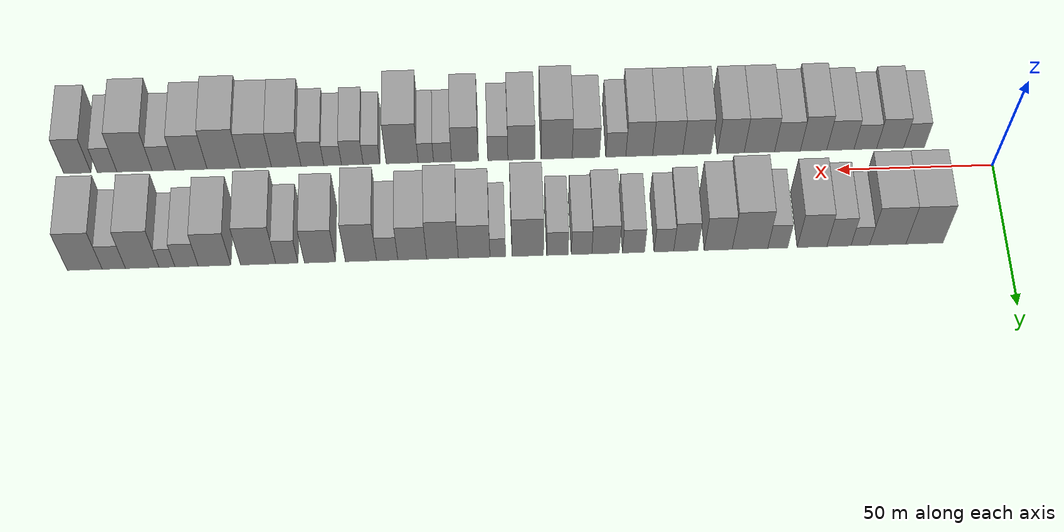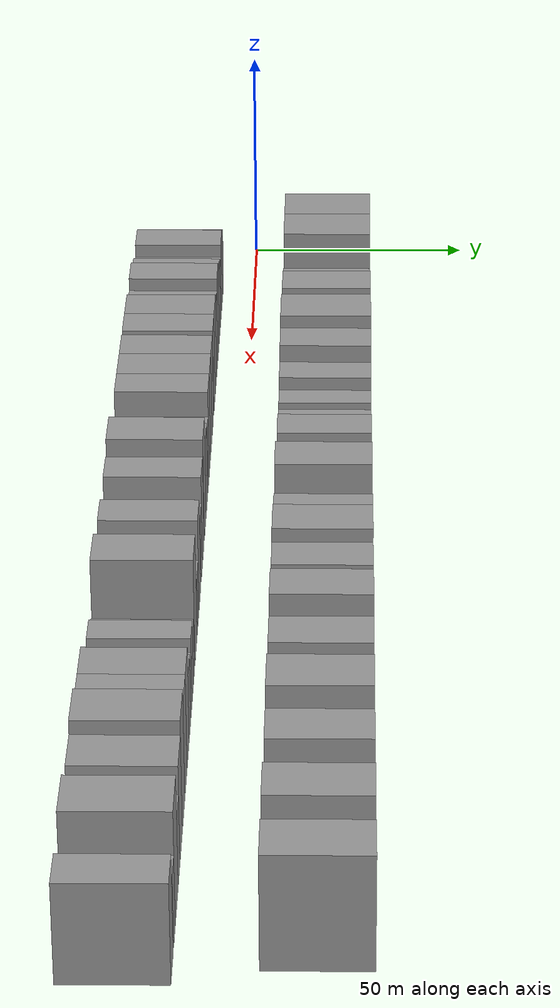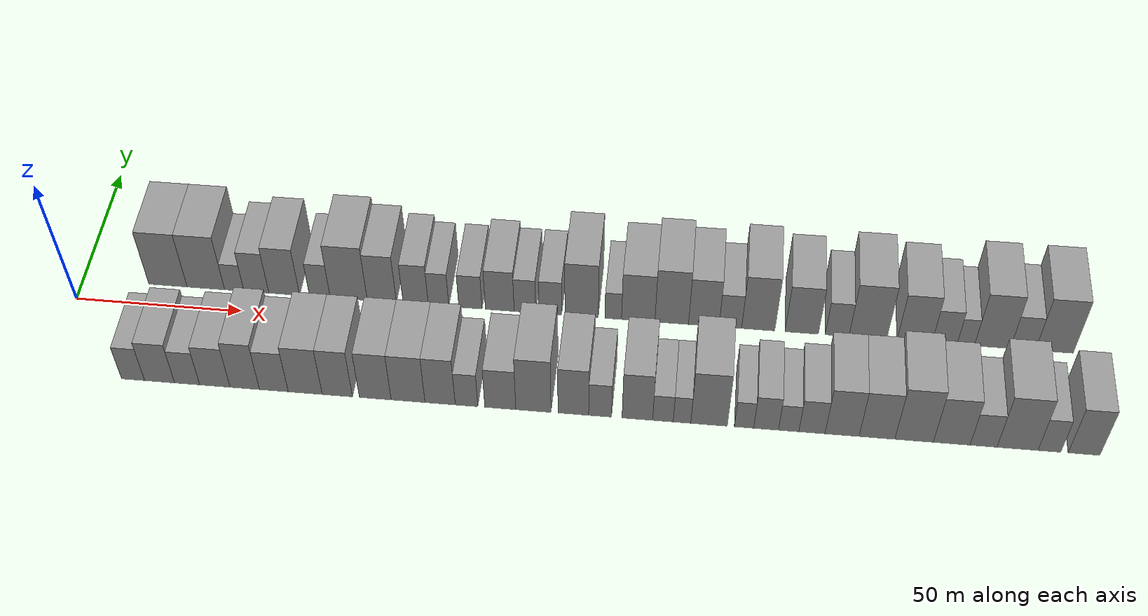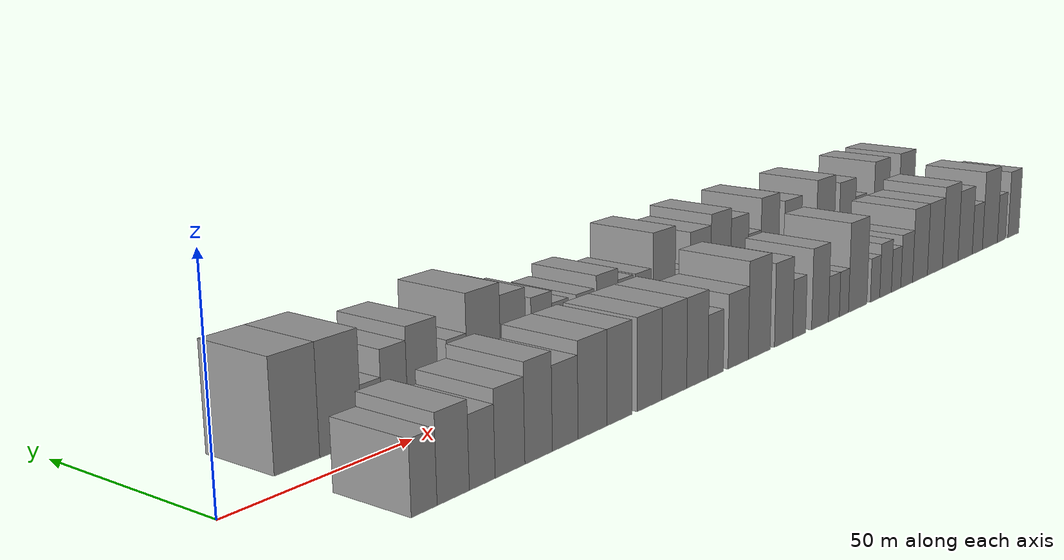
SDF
<sdf version="1.6">
 <world name="default">
  <scene>
   <sky><clouds><speed>12</speed></clouds></sky>
   <ambient>0.4 0.4 0.4 1</ambient>
   <background>0.7 0.7 0.7 1</background>
   <shadows>1</shadows>
  </scene>
  <gravity>0 0 -9.8066</gravity>
  <magnetic_field>6e-06 2.3e-05 -4.2e-05</magnetic_field>
  <physics default="0" name="default_physics" type="ode">
   <ode>
    <solver>
     <type>quick</type>
     <iters>10</iters>
     <sor>1.0</sor>
     <use_dynamic_moi_rescaling>0</use_dynamic_moi_rescaling>
    </solver>
    <constraints>
     <cfm>0</cfm>
     <erp>0.2</erp>
     <contact_max_correcting_vel>100</contact_max_correcting_vel>
     <contact_surface_layer>0.001</contact_surface_layer>
    </constraints>
   </ode>
   <max_step_size>0.004</max_step_size>
   <real_time_factor>1</real_time_factor>
   <real_time_update_rate>250</real_time_update_rate>
  </physics>
  <light name="sun" type="directional">
   <pose>0 0 10 0 0 0</pose>
   <diffuse>0.8 0.8 0.8 1</diffuse>
   <specular>0.2 0.2 0.2 1</specular>
   <attenuation>
    <range>1000</range>
    <constant>0.9</constant>
    <linear>0.01</linear>
    <quadratic>0.001</quadratic>
   </attenuation>
   <direction>-0.5 0.1 -0.9</direction>
  </light>
  <model name="building_1">
   <static>1</static>
   <pose>25.8638 17.5000 0 0.000000 0.000000 1.570796</pose>
   <link name="link">
    <pose>0 0 12.00 0 0 0</pose>
    <collision name="collision"><geometry><box><size>20.0000 11.7275 24.0000</size></box></geometry></collision>
    <visual name="visual">
     <cast_shadows>0</cast_shadows>
     <geometry><box><size>20.0000 11.7275 24.0000</size></box></geometry>
     <material>
      <script>
       <uri>model://grey_wall/materials/scripts</uri>
       <uri>model://grey_wall/materials/textures</uri>
       <name>vrc/grey_wall</name>
      </script>
     </material>
    </visual>
   </link>
  </model>
  <model name="building_2">
   <static>1</static>
   <pose>37.4629 17.5000 0 0.000000 0.000000 1.570796</pose>
   <link name="link">
    <pose>0 0 12.00 0 0 0</pose>
    <collision name="collision"><geometry><box><size>20.0000 11.4708 24.0000</size></box></geometry></collision>
    <visual name="visual">
     <cast_shadows>0</cast_shadows>
     <geometry><box><size>20.0000 11.4708 24.0000</size></box></geometry>
     <material>
      <script>
       <uri>model://grey_wall/materials/scripts</uri>
       <uri>model://grey_wall/materials/textures</uri>
       <name>vrc/grey_wall</name>
      </script>
     </material>
    </visual>
   </link>
  </model>
  <model name="building_3">
   <static>1</static>
   <pose>46.1429 17.5000 0 0.000000 0.000000 1.570796</pose>
   <link name="link">
    <pose>0 0 6.00 0 0 0</pose>
    <collision name="collision"><geometry><box><size>20.0000 5.8892 12.0000</size></box></geometry></collision>
    <visual name="visual">
     <cast_shadows>0</cast_shadows>
     <geometry><box><size>20.0000 5.8892 12.0000</size></box></geometry>
     <material>
      <script>
       <uri>model://grey_wall/materials/scripts</uri>
       <uri>model://grey_wall/materials/textures</uri>
       <name>vrc/grey_wall</name>
      </script>
     </material>
    </visual>
   </link>
  </model>
  <model name="building_4">
   <static>1</static>
   <pose>52.8842 17.5000 0 0.000000 0.000000 1.570796</pose>
   <link name="link">
    <pose>0 0 9.00 0 0 0</pose>
    <collision name="collision"><geometry><box><size>20.0000 7.5933 18.0000</size></box></geometry></collision>
    <visual name="visual">
     <cast_shadows>0</cast_shadows>
     <geometry><box><size>20.0000 7.5933 18.0000</size></box></geometry>
     <material>
      <script>
       <uri>model://grey_wall/materials/scripts</uri>
       <uri>model://grey_wall/materials/textures</uri>
       <name>vrc/grey_wall</name>
      </script>
     </material>
    </visual>
   </link>
  </model>
  <model name="building_5">
   <static>1</static>
   <pose>61.3666 17.5000 0 0.000000 0.000000 1.570796</pose>
   <link name="link">
    <pose>0 0 10.50 0 0 0</pose>
    <collision name="collision"><geometry><box><size>20.0000 9.3717 21.0000</size></box></geometry></collision>
    <visual name="visual">
     <cast_shadows>0</cast_shadows>
     <geometry><box><size>20.0000 9.3717 21.0000</size></box></geometry>
     <material>
      <script>
       <uri>model://grey_wall/materials/scripts</uri>
       <uri>model://grey_wall/materials/textures</uri>
       <name>vrc/grey_wall</name>
      </script>
     </material>
    </visual>
   </link>
  </model>
  <model name="building_6">
   <static>1</static>
   <pose>72.1852 17.5000 0 0.000000 0.000000 1.570796</pose>
   <link name="link">
    <pose>0 0 7.50 0 0 0</pose>
    <collision name="collision"><geometry><box><size>20.0000 6.2654 15.0000</size></box></geometry></collision>
    <visual name="visual">
     <cast_shadows>0</cast_shadows>
     <geometry><box><size>20.0000 6.2654 15.0000</size></box></geometry>
     <material>
      <script>
       <uri>model://grey_wall/materials/scripts</uri>
       <uri>model://grey_wall/materials/textures</uri>
       <name>vrc/grey_wall</name>
      </script>
     </material>
    </visual>
   </link>
  </model>
  <model name="building_7">
   <static>1</static>
   <pose>80.9317 17.5000 0 0.000000 0.000000 1.570796</pose>
   <link name="link">
    <pose>0 0 12.00 0 0 0</pose>
    <collision name="collision"><geometry><box><size>20.0000 11.2277 24.0000</size></box></geometry></collision>
    <visual name="visual">
     <cast_shadows>0</cast_shadows>
     <geometry><box><size>20.0000 11.2277 24.0000</size></box></geometry>
     <material>
      <script>
       <uri>model://grey_wall/materials/scripts</uri>
       <uri>model://grey_wall/materials/textures</uri>
       <name>vrc/grey_wall</name>
      </script>
     </material>
    </visual>
   </link>
  </model>
  <model name="building_8">
   <static>1</static>
   <pose>90.9545 17.5000 0 0.000000 0.000000 1.570796</pose>
   <link name="link">
    <pose>0 0 10.50 0 0 0</pose>
    <collision name="collision"><geometry><box><size>20.0000 8.8179 21.0000</size></box></geometry></collision>
    <visual name="visual">
     <cast_shadows>0</cast_shadows>
     <geometry><box><size>20.0000 8.8179 21.0000</size></box></geometry>
     <material>
      <script>
       <uri>model://grey_wall/materials/scripts</uri>
       <uri>model://grey_wall/materials/textures</uri>
       <name>vrc/grey_wall</name>
      </script>
     </material>
    </visual>
   </link>
  </model>
  <model name="building_9">
   <static>1</static>
   <pose>101.1711 17.5000 0 0.000000 0.000000 1.570796</pose>
   <link name="link">
    <pose>0 0 9.00 0 0 0</pose>
    <collision name="collision"><geometry><box><size>20.0000 7.6154 18.0000</size></box></geometry></collision>
    <visual name="visual">
     <cast_shadows>0</cast_shadows>
     <geometry><box><size>20.0000 7.6154 18.0000</size></box></geometry>
     <material>
      <script>
       <uri>model://grey_wall/materials/scripts</uri>
       <uri>model://grey_wall/materials/textures</uri>
       <name>vrc/grey_wall</name>
      </script>
     </material>
    </visual>
   </link>
  </model>
  <model name="building_10">
   <static>1</static>
   <pose>108.0555 17.5000 0 0.000000 0.000000 1.570796</pose>
   <link name="link">
    <pose>0 0 7.50 0 0 0</pose>
    <collision name="collision"><geometry><box><size>20.0000 6.1534 15.0000</size></box></geometry></collision>
    <visual name="visual">
     <cast_shadows>0</cast_shadows>
     <geometry><box><size>20.0000 6.1534 15.0000</size></box></geometry>
     <material>
      <script>
       <uri>model://grey_wall/materials/scripts</uri>
       <uri>model://grey_wall/materials/textures</uri>
       <name>vrc/grey_wall</name>
      </script>
     </material>
    </visual>
   </link>
  </model>
  <model name="building_11">
   <static>1</static>
   <pose>117.6069 17.5000 0 0.000000 0.000000 1.570796</pose>
   <link name="link">
    <pose>0 0 7.50 0 0 0</pose>
    <collision name="collision"><geometry><box><size>20.0000 6.9494 15.0000</size></box></geometry></collision>
    <visual name="visual">
     <cast_shadows>0</cast_shadows>
     <geometry><box><size>20.0000 6.9494 15.0000</size></box></geometry>
     <material>
      <script>
       <uri>model://grey_wall/materials/scripts</uri>
       <uri>model://grey_wall/materials/textures</uri>
       <name>vrc/grey_wall</name>
      </script>
     </material>
    </visual>
   </link>
  </model>
  <model name="building_12">
   <static>1</static>
   <pose>126.3903 17.5000 0 0.000000 0.000000 1.570796</pose>
   <link name="link">
    <pose>0 0 9.00 0 0 0</pose>
    <collision name="collision"><geometry><box><size>20.0000 8.6175 18.0000</size></box></geometry></collision>
    <visual name="visual">
     <cast_shadows>0</cast_shadows>
     <geometry><box><size>20.0000 8.6175 18.0000</size></box></geometry>
     <material>
      <script>
       <uri>model://grey_wall/materials/scripts</uri>
       <uri>model://grey_wall/materials/textures</uri>
       <name>vrc/grey_wall</name>
      </script>
     </material>
    </visual>
   </link>
  </model>
  <model name="building_13">
   <static>1</static>
   <pose>133.9162 17.5000 0 0.000000 0.000000 1.570796</pose>
   <link name="link">
    <pose>0 0 7.50 0 0 0</pose>
    <collision name="collision"><geometry><box><size>20.0000 6.4343 15.0000</size></box></geometry></collision>
    <visual name="visual">
     <cast_shadows>0</cast_shadows>
     <geometry><box><size>20.0000 6.4343 15.0000</size></box></geometry>
     <material>
      <script>
       <uri>model://grey_wall/materials/scripts</uri>
       <uri>model://grey_wall/materials/textures</uri>
       <name>vrc/grey_wall</name>
      </script>
     </material>
    </visual>
   </link>
  </model>
  <model name="building_14">
   <static>1</static>
   <pose>141.4976 17.5000 0 0.000000 0.000000 1.570796</pose>
   <link name="link">
    <pose>0 0 7.50 0 0 0</pose>
    <collision name="collision"><geometry><box><size>20.0000 6.7287 15.0000</size></box></geometry></collision>
    <visual name="visual">
     <cast_shadows>0</cast_shadows>
     <geometry><box><size>20.0000 6.7287 15.0000</size></box></geometry>
     <material>
      <script>
       <uri>model://grey_wall/materials/scripts</uri>
       <uri>model://grey_wall/materials/textures</uri>
       <name>vrc/grey_wall</name>
      </script>
     </material>
    </visual>
   </link>
  </model>
  <model name="building_15">
   <static>1</static>
   <pose>150.8049 17.5000 0 0.000000 0.000000 1.570796</pose>
   <link name="link">
    <pose>0 0 12.00 0 0 0</pose>
    <collision name="collision"><geometry><box><size>20.0000 9.8858 24.0000</size></box></geometry></collision>
    <visual name="visual">
     <cast_shadows>0</cast_shadows>
     <geometry><box><size>20.0000 9.8858 24.0000</size></box></geometry>
     <material>
      <script>
       <uri>model://grey_wall/materials/scripts</uri>
       <uri>model://grey_wall/materials/textures</uri>
       <name>vrc/grey_wall</name>
      </script>
     </material>
    </visual>
   </link>
  </model>
  <model name="building_16">
   <static>1</static>
   <pose>160.2080 17.5000 0 0.000000 0.000000 1.570796</pose>
   <link name="link">
    <pose>0 0 6.00 0 0 0</pose>
    <collision name="collision"><geometry><box><size>20.0000 4.9205 12.0000</size></box></geometry></collision>
    <visual name="visual">
     <cast_shadows>0</cast_shadows>
     <geometry><box><size>20.0000 4.9205 12.0000</size></box></geometry>
     <material>
      <script>
       <uri>model://grey_wall/materials/scripts</uri>
       <uri>model://grey_wall/materials/textures</uri>
       <name>vrc/grey_wall</name>
      </script>
     </material>
    </visual>
   </link>
  </model>
  <model name="building_17">
   <static>1</static>
   <pose>167.6149 17.5000 0 0.000000 0.000000 1.570796</pose>
   <link name="link">
    <pose>0 0 10.50 0 0 0</pose>
    <collision name="collision"><geometry><box><size>20.0000 9.8932 21.0000</size></box></geometry></collision>
    <visual name="visual">
     <cast_shadows>0</cast_shadows>
     <geometry><box><size>20.0000 9.8932 21.0000</size></box></geometry>
     <material>
      <script>
       <uri>model://grey_wall/materials/scripts</uri>
       <uri>model://grey_wall/materials/textures</uri>
       <name>vrc/grey_wall</name>
      </script>
     </material>
    </visual>
   </link>
  </model>
  <model name="building_18">
   <static>1</static>
   <pose>177.5266 17.5000 0 0.000000 0.000000 1.570796</pose>
   <link name="link">
    <pose>0 0 12.00 0 0 0</pose>
    <collision name="collision"><geometry><box><size>20.0000 9.9304 24.0000</size></box></geometry></collision>
    <visual name="visual">
     <cast_shadows>0</cast_shadows>
     <geometry><box><size>20.0000 9.9304 24.0000</size></box></geometry>
     <material>
      <script>
       <uri>model://grey_wall/materials/scripts</uri>
       <uri>model://grey_wall/materials/textures</uri>
       <name>vrc/grey_wall</name>
      </script>
     </material>
    </visual>
   </link>
  </model>
  <model name="building_19">
   <static>1</static>
   <pose>186.9951 17.5000 0 0.000000 0.000000 1.570796</pose>
   <link name="link">
    <pose>0 0 10.50 0 0 0</pose>
    <collision name="collision"><geometry><box><size>20.0000 9.0066 21.0000</size></box></geometry></collision>
    <visual name="visual">
     <cast_shadows>0</cast_shadows>
     <geometry><box><size>20.0000 9.0066 21.0000</size></box></geometry>
     <material>
      <script>
       <uri>model://grey_wall/materials/scripts</uri>
       <uri>model://grey_wall/materials/textures</uri>
       <name>vrc/grey_wall</name>
      </script>
     </material>
    </visual>
   </link>
  </model>
  <model name="building_20">
   <static>1</static>
   <pose>194.8216 17.5000 0 0.000000 0.000000 1.570796</pose>
   <link name="link">
    <pose>0 0 7.50 0 0 0</pose>
    <collision name="collision"><geometry><box><size>20.0000 6.6463 15.0000</size></box></geometry></collision>
    <visual name="visual">
     <cast_shadows>0</cast_shadows>
     <geometry><box><size>20.0000 6.6463 15.0000</size></box></geometry>
     <material>
      <script>
       <uri>model://grey_wall/materials/scripts</uri>
       <uri>model://grey_wall/materials/textures</uri>
       <name>vrc/grey_wall</name>
      </script>
     </material>
    </visual>
   </link>
  </model>
  <model name="building_21">
   <static>1</static>
   <pose>203.0337 17.5000 0 0.000000 0.000000 1.570796</pose>
   <link name="link">
    <pose>0 0 12.00 0 0 0</pose>
    <collision name="collision"><geometry><box><size>20.0000 9.7779 24.0000</size></box></geometry></collision>
    <visual name="visual">
     <cast_shadows>0</cast_shadows>
     <geometry><box><size>20.0000 9.7779 24.0000</size></box></geometry>
     <material>
      <script>
       <uri>model://grey_wall/materials/scripts</uri>
       <uri>model://grey_wall/materials/textures</uri>
       <name>vrc/grey_wall</name>
      </script>
     </material>
    </visual>
   </link>
  </model>
  <model name="building_22">
   <static>1</static>
   <pose>215.8172 17.5000 0 0.000000 0.000000 1.570796</pose>
   <link name="link">
    <pose>0 0 10.50 0 0 0</pose>
    <collision name="collision"><geometry><box><size>20.0000 9.7892 21.0000</size></box></geometry></collision>
    <visual name="visual">
     <cast_shadows>0</cast_shadows>
     <geometry><box><size>20.0000 9.7892 21.0000</size></box></geometry>
     <material>
      <script>
       <uri>model://grey_wall/materials/scripts</uri>
       <uri>model://grey_wall/materials/textures</uri>
       <name>vrc/grey_wall</name>
      </script>
     </material>
    </visual>
   </link>
  </model>
  <model name="building_23">
   <static>1</static>
   <pose>226.1819 17.5000 0 0.000000 0.000000 1.570796</pose>
   <link name="link">
    <pose>0 0 7.50 0 0 0</pose>
    <collision name="collision"><geometry><box><size>20.0000 6.9402 15.0000</size></box></geometry></collision>
    <visual name="visual">
     <cast_shadows>0</cast_shadows>
     <geometry><box><size>20.0000 6.9402 15.0000</size></box></geometry>
     <material>
      <script>
       <uri>model://grey_wall/materials/scripts</uri>
       <uri>model://grey_wall/materials/textures</uri>
       <name>vrc/grey_wall</name>
      </script>
     </material>
    </visual>
   </link>
  </model>
  <model name="building_24">
   <static>1</static>
   <pose>235.1652 17.5000 0 0.000000 0.000000 1.570796</pose>
   <link name="link">
    <pose>0 0 12.00 0 0 0</pose>
    <collision name="collision"><geometry><box><size>20.0000 11.0265 24.0000</size></box></geometry></collision>
    <visual name="visual">
     <cast_shadows>0</cast_shadows>
     <geometry><box><size>20.0000 11.0265 24.0000</size></box></geometry>
     <material>
      <script>
       <uri>model://grey_wall/materials/scripts</uri>
       <uri>model://grey_wall/materials/textures</uri>
       <name>vrc/grey_wall</name>
      </script>
     </material>
    </visual>
   </link>
  </model>
  <model name="building_25">
   <static>1</static>
   <pose>248.7692 17.5000 0 0.000000 0.000000 1.570796</pose>
   <link name="link">
    <pose>0 0 10.50 0 0 0</pose>
    <collision name="collision"><geometry><box><size>20.0000 10.1814 21.0000</size></box></geometry></collision>
    <visual name="visual">
     <cast_shadows>0</cast_shadows>
     <geometry><box><size>20.0000 10.1814 21.0000</size></box></geometry>
     <material>
      <script>
       <uri>model://grey_wall/materials/scripts</uri>
       <uri>model://grey_wall/materials/textures</uri>
       <name>vrc/grey_wall</name>
      </script>
     </material>
    </visual>
   </link>
  </model>
  <model name="building_26">
   <static>1</static>
   <pose>257.4827 17.5000 0 0.000000 0.000000 1.570796</pose>
   <link name="link">
    <pose>0 0 7.50 0 0 0</pose>
    <collision name="collision"><geometry><box><size>20.0000 7.2456 15.0000</size></box></geometry></collision>
    <visual name="visual">
     <cast_shadows>0</cast_shadows>
     <geometry><box><size>20.0000 7.2456 15.0000</size></box></geometry>
     <material>
      <script>
       <uri>model://grey_wall/materials/scripts</uri>
       <uri>model://grey_wall/materials/textures</uri>
       <name>vrc/grey_wall</name>
      </script>
     </material>
    </visual>
   </link>
  </model>
  <model name="building_27">
   <static>1</static>
   <pose>263.6017 17.5000 0 0.000000 0.000000 1.570796</pose>
   <link name="link">
    <pose>0 0 6.00 0 0 0</pose>
    <collision name="collision"><geometry><box><size>20.0000 4.9924 12.0000</size></box></geometry></collision>
    <visual name="visual">
     <cast_shadows>0</cast_shadows>
     <geometry><box><size>20.0000 4.9924 12.0000</size></box></geometry>
     <material>
      <script>
       <uri>model://grey_wall/materials/scripts</uri>
       <uri>model://grey_wall/materials/textures</uri>
       <name>vrc/grey_wall</name>
      </script>
     </material>
    </visual>
   </link>
  </model>
  <model name="building_28">
   <static>1</static>
   <pose>271.3179 17.5000 0 0.000000 0.000000 1.570796</pose>
   <link name="link">
    <pose>0 0 12.00 0 0 0</pose>
    <collision name="collision"><geometry><box><size>20.0000 10.4401 24.0000</size></box></geometry></collision>
    <visual name="visual">
     <cast_shadows>0</cast_shadows>
     <geometry><box><size>20.0000 10.4401 24.0000</size></box></geometry>
     <material>
      <script>
       <uri>model://grey_wall/materials/scripts</uri>
       <uri>model://grey_wall/materials/textures</uri>
       <name>vrc/grey_wall</name>
      </script>
     </material>
    </visual>
   </link>
  </model>
  <model name="building_29">
   <static>1</static>
   <pose>280.1564 17.5000 0 0.000000 0.000000 1.570796</pose>
   <link name="link">
    <pose>0 0 7.50 0 0 0</pose>
    <collision name="collision"><geometry><box><size>20.0000 7.2369 15.0000</size></box></geometry></collision>
    <visual name="visual">
     <cast_shadows>0</cast_shadows>
     <geometry><box><size>20.0000 7.2369 15.0000</size></box></geometry>
     <material>
      <script>
       <uri>model://grey_wall/materials/scripts</uri>
       <uri>model://grey_wall/materials/textures</uri>
       <name>vrc/grey_wall</name>
      </script>
     </material>
    </visual>
   </link>
  </model>
  <model name="building_30">
   <static>1</static>
   <pose>289.2104 17.5000 0 0.000000 0.000000 1.570796</pose>
   <link name="link">
    <pose>0 0 12.00 0 0 0</pose>
    <collision name="collision"><geometry><box><size>20.0000 10.8711 24.0000</size></box></geometry></collision>
    <visual name="visual">
     <cast_shadows>0</cast_shadows>
     <geometry><box><size>20.0000 10.8711 24.0000</size></box></geometry>
     <material>
      <script>
       <uri>model://grey_wall/materials/scripts</uri>
       <uri>model://grey_wall/materials/textures</uri>
       <name>vrc/grey_wall</name>
      </script>
     </material>
    </visual>
   </link>
  </model>
  <model name="building_31">
   <static>1</static>
   <pose>24.3830 -17.5000 0 0.000000 0.000000 1.570796</pose>
   <link name="link">
    <pose>0 0 7.50 0 0 0</pose>
    <collision name="collision"><geometry><box><size>20.0000 6.7660 15.0000</size></box></geometry></collision>
    <visual name="visual">
     <cast_shadows>0</cast_shadows>
     <geometry><box><size>20.0000 6.7660 15.0000</size></box></geometry>
     <material>
      <script>
       <uri>model://grey_wall/materials/scripts</uri>
       <uri>model://grey_wall/materials/textures</uri>
       <name>vrc/grey_wall</name>
      </script>
     </material>
    </visual>
   </link>
  </model>
  <model name="building_32">
   <static>1</static>
   <pose>32.1671 -17.5000 0 0.000000 0.000000 1.570796</pose>
   <link name="link">
    <pose>0 0 9.00 0 0 0</pose>
    <collision name="collision"><geometry><box><size>20.0000 8.8020 18.0000</size></box></geometry></collision>
    <visual name="visual">
     <cast_shadows>0</cast_shadows>
     <geometry><box><size>20.0000 8.8020 18.0000</size></box></geometry>
     <material>
      <script>
       <uri>model://grey_wall/materials/scripts</uri>
       <uri>model://grey_wall/materials/textures</uri>
       <name>vrc/grey_wall</name>
      </script>
     </material>
    </visual>
   </link>
  </model>
  <model name="building_33">
   <static>1</static>
   <pose>40.2377 -17.5000 0 0.000000 0.000000 1.570796</pose>
   <link name="link">
    <pose>0 0 7.50 0 0 0</pose>
    <collision name="collision"><geometry><box><size>20.0000 7.3393 15.0000</size></box></geometry></collision>
    <visual name="visual">
     <cast_shadows>0</cast_shadows>
     <geometry><box><size>20.0000 7.3393 15.0000</size></box></geometry>
     <material>
      <script>
       <uri>model://grey_wall/materials/scripts</uri>
       <uri>model://grey_wall/materials/textures</uri>
       <name>vrc/grey_wall</name>
      </script>
     </material>
    </visual>
   </link>
  </model>
  <model name="building_34">
   <static>1</static>
   <pose>48.3434 -17.5000 0 0.000000 0.000000 1.570796</pose>
   <link name="link">
    <pose>0 0 9.00 0 0 0</pose>
    <collision name="collision"><geometry><box><size>20.0000 8.8722 18.0000</size></box></geometry></collision>
    <visual name="visual">
     <cast_shadows>0</cast_shadows>
     <geometry><box><size>20.0000 8.8722 18.0000</size></box></geometry>
     <material>
      <script>
       <uri>model://grey_wall/materials/scripts</uri>
       <uri>model://grey_wall/materials/textures</uri>
       <name>vrc/grey_wall</name>
      </script>
     </material>
    </visual>
   </link>
  </model>
  <model name="building_35">
   <static>1</static>
   <pose>57.0564 -17.5000 0 0.000000 0.000000 1.570796</pose>
   <link name="link">
    <pose>0 0 10.50 0 0 0</pose>
    <collision name="collision"><geometry><box><size>20.0000 8.5538 21.0000</size></box></geometry></collision>
    <visual name="visual">
     <cast_shadows>0</cast_shadows>
     <geometry><box><size>20.0000 8.5538 21.0000</size></box></geometry>
     <material>
      <script>
       <uri>model://grey_wall/materials/scripts</uri>
       <uri>model://grey_wall/materials/textures</uri>
       <name>vrc/grey_wall</name>
      </script>
     </material>
    </visual>
   </link>
  </model>
  <model name="building_36">
   <static>1</static>
   <pose>65.5148 -17.5000 0 0.000000 0.000000 1.570796</pose>
   <link name="link">
    <pose>0 0 9.00 0 0 0</pose>
    <collision name="collision"><geometry><box><size>20.0000 8.3629 18.0000</size></box></geometry></collision>
    <visual name="visual">
     <cast_shadows>0</cast_shadows>
     <geometry><box><size>20.0000 8.3629 18.0000</size></box></geometry>
     <material>
      <script>
       <uri>model://grey_wall/materials/scripts</uri>
       <uri>model://grey_wall/materials/textures</uri>
       <name>vrc/grey_wall</name>
      </script>
     </material>
    </visual>
   </link>
  </model>
  <model name="building_37">
   <static>1</static>
   <pose>74.6277 -17.5000 0 0.000000 0.000000 1.570796</pose>
   <link name="link">
    <pose>0 0 10.50 0 0 0</pose>
    <collision name="collision"><geometry><box><size>20.0000 9.8629 21.0000</size></box></geometry></collision>
    <visual name="visual">
     <cast_shadows>0</cast_shadows>
     <geometry><box><size>20.0000 9.8629 21.0000</size></box></geometry>
     <material>
      <script>
       <uri>model://grey_wall/materials/scripts</uri>
       <uri>model://grey_wall/materials/textures</uri>
       <name>vrc/grey_wall</name>
      </script>
     </material>
    </visual>
   </link>
  </model>
  <model name="building_38">
   <static>1</static>
   <pose>83.9404 -17.5000 0 0.000000 0.000000 1.570796</pose>
   <link name="link">
    <pose>0 0 10.50 0 0 0</pose>
    <collision name="collision"><geometry><box><size>20.0000 8.7625 21.0000</size></box></geometry></collision>
    <visual name="visual">
     <cast_shadows>0</cast_shadows>
     <geometry><box><size>20.0000 8.7625 21.0000</size></box></geometry>
     <material>
      <script>
       <uri>model://grey_wall/materials/scripts</uri>
       <uri>model://grey_wall/materials/textures</uri>
       <name>vrc/grey_wall</name>
      </script>
     </material>
    </visual>
   </link>
  </model>
  <model name="building_39">
   <static>1</static>
   <pose>94.8983 -17.5000 0 0.000000 0.000000 1.570796</pose>
   <link name="link">
    <pose>0 0 10.50 0 0 0</pose>
    <collision name="collision"><geometry><box><size>20.0000 9.1533 21.0000</size></box></geometry></collision>
    <visual name="visual">
     <cast_shadows>0</cast_shadows>
     <geometry><box><size>20.0000 9.1533 21.0000</size></box></geometry>
     <material>
      <script>
       <uri>model://grey_wall/materials/scripts</uri>
       <uri>model://grey_wall/materials/textures</uri>
       <name>vrc/grey_wall</name>
      </script>
     </material>
    </visual>
   </link>
  </model>
  <model name="building_40">
   <static>1</static>
   <pose>104.3553 -17.5000 0 0.000000 0.000000 1.570796</pose>
   <link name="link">
    <pose>0 0 10.50 0 0 0</pose>
    <collision name="collision"><geometry><box><size>20.0000 9.7607 21.0000</size></box></geometry></collision>
    <visual name="visual">
     <cast_shadows>0</cast_shadows>
     <geometry><box><size>20.0000 9.7607 21.0000</size></box></geometry>
     <material>
      <script>
       <uri>model://grey_wall/materials/scripts</uri>
       <uri>model://grey_wall/materials/textures</uri>
       <name>vrc/grey_wall</name>
      </script>
     </material>
    </visual>
   </link>
  </model>
  <model name="building_41">
   <static>1</static>
   <pose>113.5725 -17.5000 0 0.000000 0.000000 1.570796</pose>
   <link name="link">
    <pose>0 0 10.50 0 0 0</pose>
    <collision name="collision"><geometry><box><size>20.0000 8.6738 21.0000</size></box></geometry></collision>
    <visual name="visual">
     <cast_shadows>0</cast_shadows>
     <geometry><box><size>20.0000 8.6738 21.0000</size></box></geometry>
     <material>
      <script>
       <uri>model://grey_wall/materials/scripts</uri>
       <uri>model://grey_wall/materials/textures</uri>
       <name>vrc/grey_wall</name>
      </script>
     </material>
    </visual>
   </link>
  </model>
  <model name="building_42">
   <static>1</static>
   <pose>121.1472 -17.5000 0 0.000000 0.000000 1.570796</pose>
   <link name="link">
    <pose>0 0 7.50 0 0 0</pose>
    <collision name="collision"><geometry><box><size>20.0000 6.4755 15.0000</size></box></geometry></collision>
    <visual name="visual">
     <cast_shadows>0</cast_shadows>
     <geometry><box><size>20.0000 6.4755 15.0000</size></box></geometry>
     <material>
      <script>
       <uri>model://grey_wall/materials/scripts</uri>
       <uri>model://grey_wall/materials/textures</uri>
       <name>vrc/grey_wall</name>
      </script>
     </material>
    </visual>
   </link>
  </model>
  <model name="building_43">
   <static>1</static>
   <pose>130.8215 -17.5000 0 0.000000 0.000000 1.570796</pose>
   <link name="link">
    <pose>0 0 9.00 0 0 0</pose>
    <collision name="collision"><geometry><box><size>20.0000 8.8731 18.0000</size></box></geometry></collision>
    <visual name="visual">
     <cast_shadows>0</cast_shadows>
     <geometry><box><size>20.0000 8.8731 18.0000</size></box></geometry>
     <material>
      <script>
       <uri>model://grey_wall/materials/scripts</uri>
       <uri>model://grey_wall/materials/textures</uri>
       <name>vrc/grey_wall</name>
      </script>
     </material>
    </visual>
   </link>
  </model>
  <model name="building_44">
   <static>1</static>
   <pose>140.2786 -17.5000 0 0.000000 0.000000 1.570796</pose>
   <link name="link">
    <pose>0 0 12.00 0 0 0</pose>
    <collision name="collision"><geometry><box><size>20.0000 10.0412 24.0000</size></box></geometry></collision>
    <visual name="visual">
     <cast_shadows>0</cast_shadows>
     <geometry><box><size>20.0000 10.0412 24.0000</size></box></geometry>
     <material>
      <script>
       <uri>model://grey_wall/materials/scripts</uri>
       <uri>model://grey_wall/materials/textures</uri>
       <name>vrc/grey_wall</name>
      </script>
     </material>
    </visual>
   </link>
  </model>
  <model name="building_45">
   <static>1</static>
   <pose>151.6497 -17.5000 0 0.000000 0.000000 1.570796</pose>
   <link name="link">
    <pose>0 0 10.50 0 0 0</pose>
    <collision name="collision"><geometry><box><size>20.0000 8.7010 21.0000</size></box></geometry></collision>
    <visual name="visual">
     <cast_shadows>0</cast_shadows>
     <geometry><box><size>20.0000 8.7010 21.0000</size></box></geometry>
     <material>
      <script>
       <uri>model://grey_wall/materials/scripts</uri>
       <uri>model://grey_wall/materials/textures</uri>
       <name>vrc/grey_wall</name>
      </script>
     </material>
    </visual>
   </link>
  </model>
  <model name="building_46">
   <static>1</static>
   <pose>159.2428 -17.5000 0 0.000000 0.000000 1.570796</pose>
   <link name="link">
    <pose>0 0 7.50 0 0 0</pose>
    <collision name="collision"><geometry><box><size>20.0000 6.4851 15.0000</size></box></geometry></collision>
    <visual name="visual">
     <cast_shadows>0</cast_shadows>
     <geometry><box><size>20.0000 6.4851 15.0000</size></box></geometry>
     <material>
      <script>
       <uri>model://grey_wall/materials/scripts</uri>
       <uri>model://grey_wall/materials/textures</uri>
       <name>vrc/grey_wall</name>
      </script>
     </material>
    </visual>
   </link>
  </model>
  <model name="building_47">
   <static>1</static>
   <pose>169.8238 -17.5000 0 0.000000 0.000000 1.570796</pose>
   <link name="link">
    <pose>0 0 10.50 0 0 0</pose>
    <collision name="collision"><geometry><box><size>20.0000 8.6770 21.0000</size></box></geometry></collision>
    <visual name="visual">
     <cast_shadows>0</cast_shadows>
     <geometry><box><size>20.0000 8.6770 21.0000</size></box></geometry>
     <material>
      <script>
       <uri>model://grey_wall/materials/scripts</uri>
       <uri>model://grey_wall/materials/textures</uri>
       <name>vrc/grey_wall</name>
      </script>
     </material>
    </visual>
   </link>
  </model>
  <model name="building_48">
   <static>1</static>
   <pose>177.0725 -17.5000 0 0.000000 0.000000 1.570796</pose>
   <link name="link">
    <pose>0 0 6.00 0 0 0</pose>
    <collision name="collision"><geometry><box><size>20.0000 5.8204 12.0000</size></box></geometry></collision>
    <visual name="visual">
     <cast_shadows>0</cast_shadows>
     <geometry><box><size>20.0000 5.8204 12.0000</size></box></geometry>
     <material>
      <script>
       <uri>model://grey_wall/materials/scripts</uri>
       <uri>model://grey_wall/materials/textures</uri>
       <name>vrc/grey_wall</name>
      </script>
     </material>
    </visual>
   </link>
  </model>
  <model name="building_49">
   <static>1</static>
   <pose>182.4619 -17.5000 0 0.000000 0.000000 1.570796</pose>
   <link name="link">
    <pose>0 0 6.00 0 0 0</pose>
    <collision name="collision"><geometry><box><size>20.0000 4.9583 12.0000</size></box></geometry></collision>
    <visual name="visual">
     <cast_shadows>0</cast_shadows>
     <geometry><box><size>20.0000 4.9583 12.0000</size></box></geometry>
     <material>
      <script>
       <uri>model://grey_wall/materials/scripts</uri>
       <uri>model://grey_wall/materials/textures</uri>
       <name>vrc/grey_wall</name>
      </script>
     </material>
    </visual>
   </link>
  </model>
  <model name="building_50">
   <static>1</static>
   <pose>190.0836 -17.5000 0 0.000000 0.000000 1.570796</pose>
   <link name="link">
    <pose>0 0 12.00 0 0 0</pose>
    <collision name="collision"><geometry><box><size>20.0000 10.2850 24.0000</size></box></geometry></collision>
    <visual name="visual">
     <cast_shadows>0</cast_shadows>
     <geometry><box><size>20.0000 10.2850 24.0000</size></box></geometry>
     <material>
      <script>
       <uri>model://grey_wall/materials/scripts</uri>
       <uri>model://grey_wall/materials/textures</uri>
       <name>vrc/grey_wall</name>
      </script>
     </material>
    </visual>
   </link>
  </model>
  <model name="building_51">
   <static>1</static>
   <pose>199.9391 -17.5000 0 0.000000 0.000000 1.570796</pose>
   <link name="link">
    <pose>0 0 6.00 0 0 0</pose>
    <collision name="collision"><geometry><box><size>20.0000 5.4261 12.0000</size></box></geometry></collision>
    <visual name="visual">
     <cast_shadows>0</cast_shadows>
     <geometry><box><size>20.0000 5.4261 12.0000</size></box></geometry>
     <material>
      <script>
       <uri>model://grey_wall/materials/scripts</uri>
       <uri>model://grey_wall/materials/textures</uri>
       <name>vrc/grey_wall</name>
      </script>
     </material>
    </visual>
   </link>
  </model>
  <model name="building_52">
   <static>1</static>
   <pose>206.1290 -17.5000 0 0.000000 0.000000 1.570796</pose>
   <link name="link">
    <pose>0 0 7.50 0 0 0</pose>
    <collision name="collision"><geometry><box><size>20.0000 6.9537 15.0000</size></box></geometry></collision>
    <visual name="visual">
     <cast_shadows>0</cast_shadows>
     <geometry><box><size>20.0000 6.9537 15.0000</size></box></geometry>
     <material>
      <script>
       <uri>model://grey_wall/materials/scripts</uri>
       <uri>model://grey_wall/materials/textures</uri>
       <name>vrc/grey_wall</name>
      </script>
     </material>
    </visual>
   </link>
  </model>
  <model name="building_53">
   <static>1</static>
   <pose>212.4621 -17.5000 0 0.000000 0.000000 1.570796</pose>
   <link name="link">
    <pose>0 0 6.00 0 0 0</pose>
    <collision name="collision"><geometry><box><size>20.0000 5.7126 12.0000</size></box></geometry></collision>
    <visual name="visual">
     <cast_shadows>0</cast_shadows>
     <geometry><box><size>20.0000 5.7126 12.0000</size></box></geometry>
     <material>
      <script>
       <uri>model://grey_wall/materials/scripts</uri>
       <uri>model://grey_wall/materials/textures</uri>
       <name>vrc/grey_wall</name>
      </script>
     </material>
    </visual>
   </link>
  </model>
  <model name="building_54">
   <static>1</static>
   <pose>218.9770 -17.5000 0 0.000000 0.000000 1.570796</pose>
   <link name="link">
    <pose>0 0 7.50 0 0 0</pose>
    <collision name="collision"><geometry><box><size>20.0000 7.3172 15.0000</size></box></geometry></collision>
    <visual name="visual">
     <cast_shadows>0</cast_shadows>
     <geometry><box><size>20.0000 7.3172 15.0000</size></box></geometry>
     <material>
      <script>
       <uri>model://grey_wall/materials/scripts</uri>
       <uri>model://grey_wall/materials/textures</uri>
       <name>vrc/grey_wall</name>
      </script>
     </material>
    </visual>
   </link>
  </model>
  <model name="building_55">
   <static>1</static>
   <pose>227.3933 -17.5000 0 0.000000 0.000000 1.570796</pose>
   <link name="link">
    <pose>0 0 10.50 0 0 0</pose>
    <collision name="collision"><geometry><box><size>20.0000 9.5154 21.0000</size></box></geometry></collision>
    <visual name="visual">
     <cast_shadows>0</cast_shadows>
     <geometry><box><size>20.0000 9.5154 21.0000</size></box></geometry>
     <material>
      <script>
       <uri>model://grey_wall/materials/scripts</uri>
       <uri>model://grey_wall/materials/textures</uri>
       <name>vrc/grey_wall</name>
      </script>
     </material>
    </visual>
   </link>
  </model>
  <model name="building_56">
   <static>1</static>
   <pose>237.1351 -17.5000 0 0.000000 0.000000 1.570796</pose>
   <link name="link">
    <pose>0 0 10.50 0 0 0</pose>
    <collision name="collision"><geometry><box><size>20.0000 9.9682 21.0000</size></box></geometry></collision>
    <visual name="visual">
     <cast_shadows>0</cast_shadows>
     <geometry><box><size>20.0000 9.9682 21.0000</size></box></geometry>
     <material>
      <script>
       <uri>model://grey_wall/materials/scripts</uri>
       <uri>model://grey_wall/materials/textures</uri>
       <name>vrc/grey_wall</name>
      </script>
     </material>
    </visual>
   </link>
  </model>
  <model name="building_57">
   <static>1</static>
   <pose>247.4711 -17.5000 0 0.000000 0.000000 1.570796</pose>
   <link name="link">
    <pose>0 0 12.00 0 0 0</pose>
    <collision name="collision"><geometry><box><size>20.0000 10.7038 24.0000</size></box></geometry></collision>
    <visual name="visual">
     <cast_shadows>0</cast_shadows>
     <geometry><box><size>20.0000 10.7038 24.0000</size></box></geometry>
     <material>
      <script>
       <uri>model://grey_wall/materials/scripts</uri>
       <uri>model://grey_wall/materials/textures</uri>
       <name>vrc/grey_wall</name>
      </script>
     </material>
    </visual>
   </link>
  </model>
  <model name="building_58">
   <static>1</static>
   <pose>257.9120 -17.5000 0 0.000000 0.000000 1.570796</pose>
   <link name="link">
    <pose>0 0 10.50 0 0 0</pose>
    <collision name="collision"><geometry><box><size>20.0000 10.1780 21.0000</size></box></geometry></collision>
    <visual name="visual">
     <cast_shadows>0</cast_shadows>
     <geometry><box><size>20.0000 10.1780 21.0000</size></box></geometry>
     <material>
      <script>
       <uri>model://grey_wall/materials/scripts</uri>
       <uri>model://grey_wall/materials/textures</uri>
       <name>vrc/grey_wall</name>
      </script>
     </material>
    </visual>
   </link>
  </model>
  <model name="building_59">
   <static>1</static>
   <pose>266.7210 -17.5000 0 0.000000 0.000000 1.570796</pose>
   <link name="link">
    <pose>0 0 7.50 0 0 0</pose>
    <collision name="collision"><geometry><box><size>20.0000 7.4400 15.0000</size></box></geometry></collision>
    <visual name="visual">
     <cast_shadows>0</cast_shadows>
     <geometry><box><size>20.0000 7.4400 15.0000</size></box></geometry>
     <material>
      <script>
       <uri>model://grey_wall/materials/scripts</uri>
       <uri>model://grey_wall/materials/textures</uri>
       <name>vrc/grey_wall</name>
      </script>
     </material>
    </visual>
   </link>
  </model>
  <model name="building_60">
   <static>1</static>
   <pose>276.1010 -17.5000 0 0.000000 0.000000 1.570796</pose>
   <link name="link">
    <pose>0 0 12.00 0 0 0</pose>
    <collision name="collision"><geometry><box><size>20.0000 11.3201 24.0000</size></box></geometry></collision>
    <visual name="visual">
     <cast_shadows>0</cast_shadows>
     <geometry><box><size>20.0000 11.3201 24.0000</size></box></geometry>
     <material>
      <script>
       <uri>model://grey_wall/materials/scripts</uri>
       <uri>model://grey_wall/materials/textures</uri>
       <name>vrc/grey_wall</name>
      </script>
     </material>
    </visual>
   </link>
  </model>
  <model name="building_61">
   <static>1</static>
   <pose>284.9104 -17.5000 0 0.000000 0.000000 1.570796</pose>
   <link name="link">
    <pose>0 0 7.50 0 0 0</pose>
    <collision name="collision"><geometry><box><size>20.0000 6.2987 15.0000</size></box></geometry></collision>
    <visual name="visual">
     <cast_shadows>0</cast_shadows>
     <geometry><box><size>20.0000 6.2987 15.0000</size></box></geometry>
     <material>
      <script>
       <uri>model://grey_wall/materials/scripts</uri>
       <uri>model://grey_wall/materials/textures</uri>
       <name>vrc/grey_wall</name>
      </script>
     </material>
    </visual>
   </link>
  </model>
  <model name="building_62">
   <static>1</static>
   <pose>294.4269 -17.5000 0 0.000000 0.000000 1.570796</pose>
   <link name="link">
    <pose>0 0 10.50 0 0 0</pose>
    <collision name="collision"><geometry><box><size>20.0000 8.7344 21.0000</size></box></geometry></collision>
    <visual name="visual">
     <cast_shadows>0</cast_shadows>
     <geometry><box><size>20.0000 8.7344 21.0000</size></box></geometry>
     <material>
      <script>
       <uri>model://grey_wall/materials/scripts</uri>
       <uri>model://grey_wall/materials/textures</uri>
       <name>vrc/grey_wall</name>
      </script>
     </material>
    </visual>
   </link>
  </model>
 </world>
</sdf>
